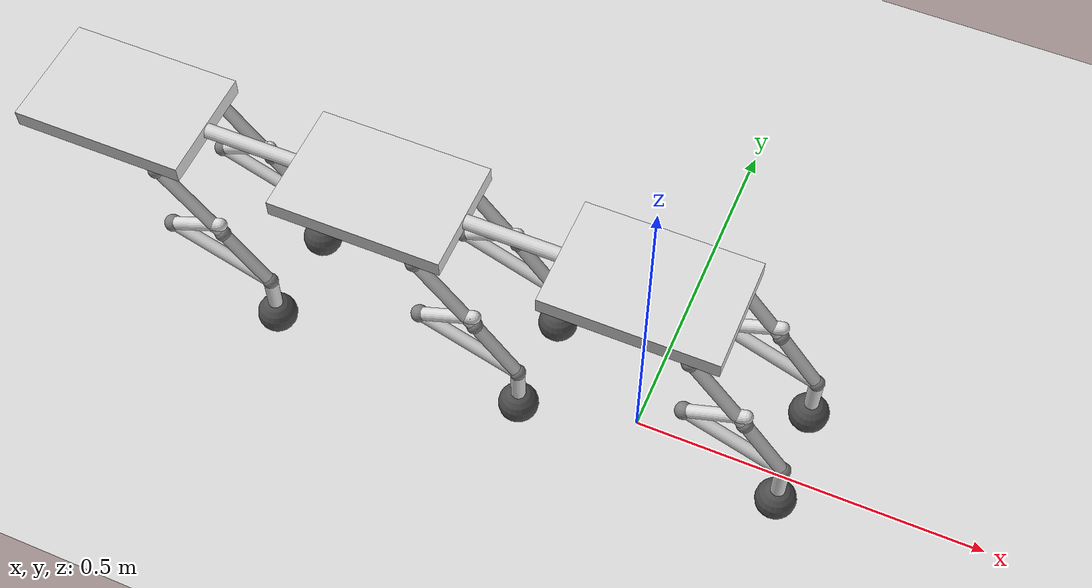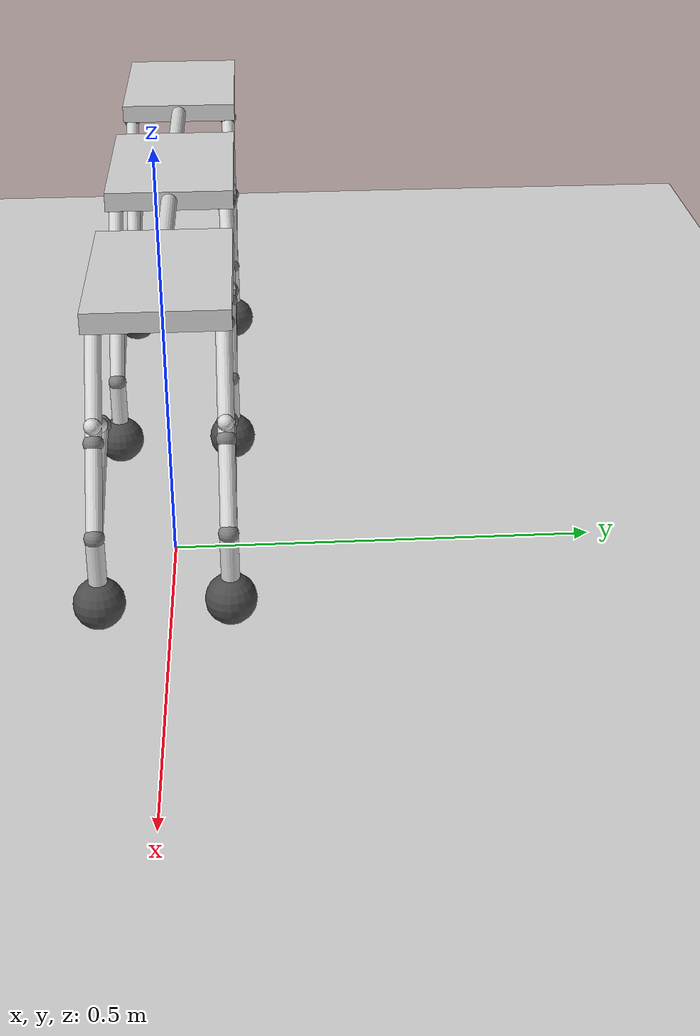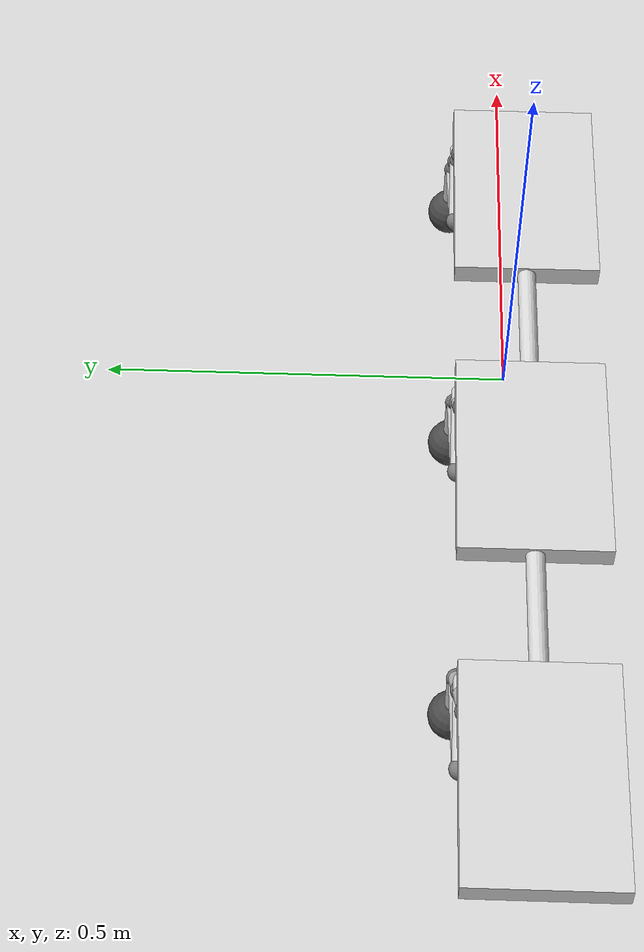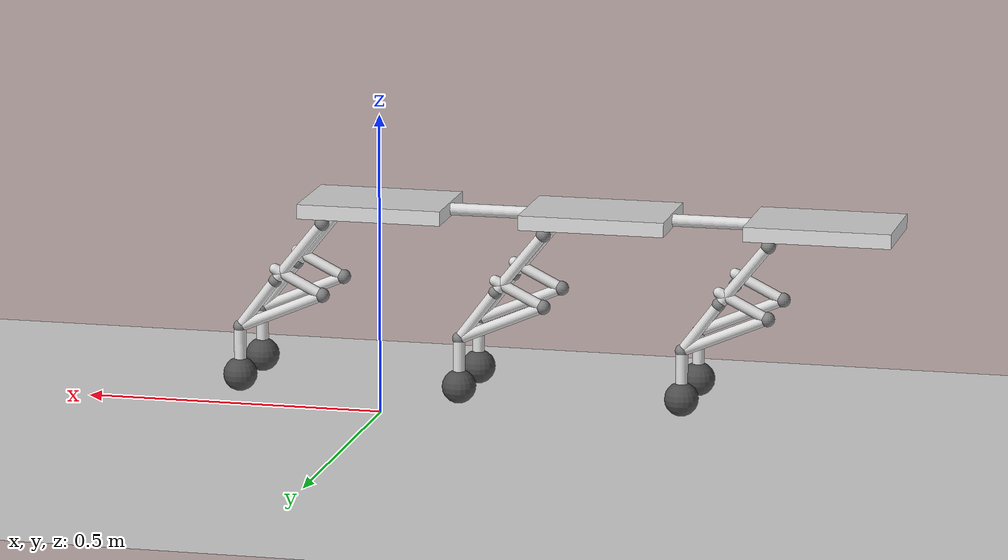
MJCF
<mujoco model="jansen_linkage_robot">
  <compiler angle="radian" coordinate="local" inertiafromgeom="true"/>

  <option timestep="0.002" gravity="0 0 -9.81" iterations="50" solver="Newton" tolerance="1e-10">
    <flag warmstart="enable" energy="enable"/>
  </option>

  <default>
    <joint limited="true" damping="0.5" armature="0.01"/>
    <geom conaffinity="1" condim="3" contype="1" friction="1.5 0.005 0.0001" rgba="0.85 0.85 0.85 1" margin="0.001" solref="0.02 1"/>
    <equality solimp="0.95 0.99 0.001" solref="0.02 1"/>
  </default>

  <asset>
    <texture name="grid" type="2d" builtin="checker" width="512" height="512" rgb1="0.15 0.15 0.15" rgb2="0.25 0.25 0.25"/>
    <material name="grid" texture="grid" texrepeat="10 10" reflectance="0.3"/>
    <material name="linkage" rgba="0.7 0.7 0.7 1"/>
    <material name="actuator" rgba="0.7 0.75 0.35 1"/>
    <material name="platform" rgba="0.6 0.6 0.65 1"/>
  </asset>

  <worldbody>
    <light directional="true" diffuse="0.8 0.8 0.8" specular="0.4 0.4 0.4" pos="0 0 5" dir="0 0 -1"/>
    <light directional="true" diffuse="0.5 0.5 0.5" specular="0.2 0.2 0.2" pos="3 3 4" dir="-1 -1 -1"/>
    <geom name="floor" pos="0 0 0" size="10 10 0.1" type="plane" material="grid" condim="3"/>

    <body name="base" pos="0 0 0.35">
      <freejoint/>
      <geom name="base_plate" type="box" size="0.12 0.08 0.012" mass="0.8" material="platform"/>

      <!-- Front Left Leg -->
      <!-- Fixed pivot point on platform (top of triangle) -->
      <body name="leg1_pivot" pos="0.08 0.07 -0.02">
        <geom name="leg1_pivot_sphere" type="sphere" size="0.012" mass="0.02" rgba="0.5 0.5 0.5 1"/>
      </body>

      <!-- Crank - rotates from pivot -->
      <body name="leg1_crank" pos="0.08 0.07 -0.02">
        <joint name="leg1_crank_j" type="hinge" axis="0 1 0" range="-6.28 6.28" damping="0.2"/>
        <geom name="leg1_crank_geom" type="capsule" fromto="0 0 0 0.08 0 -0.10" size="0.009" mass="0.04" material="actuator"/>

        <!-- Point A at end of crank -->
        <body name="leg1_A" pos="0.08 0 -0.10">
          <geom name="leg1_A_sphere" type="sphere" size="0.011" mass="0.02" rgba="0.5 0.5 0.5 1"/>
        </body>
      </body>

      <!-- Fixed lower pivot (bottom left of triangle) -->
      <body name="leg1_lower_pivot" pos="0.08 0.07 -0.14">
        <geom name="leg1_lower_pivot_sphere" type="sphere" size="0.012" mass="0.02" rgba="0.5 0.5 0.5 1"/>
      </body>

      <!-- Link from lower pivot to point A (left side of triangle) -->
      <body name="leg1_left_link" pos="0.08 0.07 -0.14">
        <joint name="leg1_left_j" type="hinge" axis="0 1 0" range="-3.14 3.14" damping="0.3"/>
        <geom name="leg1_left_geom" type="capsule" fromto="0 0 0 0.08 0 0.04" size="0.009" mass="0.04" material="linkage"/>
      </body>

      <!-- Link from lower pivot to point B (bottom of triangle) -->
      <body name="leg1_bottom_link" pos="0.08 0.07 -0.14">
        <joint name="leg1_bottom_j" type="hinge" axis="0 1 0" range="-3.14 3.14" damping="0.3"/>
        <geom name="leg1_bottom_geom" type="capsule" fromto="0 0 0 0.14 0 -0.06" size="0.009" mass="0.05" material="linkage"/>

        <!-- Point B -->
        <body name="leg1_B" pos="0.14 0 -0.06">
          <geom name="leg1_B_sphere" type="sphere" size="0.011" mass="0.02" rgba="0.5 0.5 0.5 1"/>
        </body>
      </body>

      <!-- Link from A to B (right side of triangle) -->
      <body name="leg1_right_link" pos="0.16 0.07 -0.12">
        <joint name="leg1_right_j" type="hinge" axis="0 1 0" range="-3.14 3.14" damping="0.3"/>
        <geom name="leg1_right_geom" type="capsule" fromto="0 0 0 0.06 0 -0.08" size="0.009" mass="0.04" material="linkage"/>
      </body>

      <!-- Vertical link with foot (pyramid edge) -->
      <body name="leg1_vertical" pos="0.22 0.07 -0.20">
        <joint name="leg1_vertical_j" type="hinge" axis="0 1 0" range="-3.14 3.14" damping="0.3"/>
        <geom name="leg1_vertical_geom" type="capsule" fromto="0 0 0 0 0 -0.08" size="0.010" mass="0.045" material="linkage"/>

        <body name="leg1_foot" pos="0 0 -0.08">
          <geom name="leg1_foot_tip" type="sphere" size="0.028" mass="0.08" rgba="0.3 0.3 0.3 1" friction="2.5 0.005 0.0001"/>
        </body>
      </body>

      <!-- Top pyramid link (from A to top of vertical) -->
      <body name="leg1_top_pyramid" pos="0.16 0.07 -0.12">
        <joint name="leg1_top_pyr_j" type="hinge" axis="0 1 0" range="-3.14 3.14" damping="0.3"/>
        <geom name="leg1_top_pyr_geom" type="capsule" fromto="0 0 0 0.06 0 -0.08" size="0.009" mass="0.04" material="linkage"/>
      </body>

      <!-- Bottom pyramid link (from B to bottom of vertical) -->
      <body name="leg1_bottom_pyramid" pos="0.22 0.07 -0.20">
        <joint name="leg1_bot_pyr_j" type="hinge" axis="0 1 0" range="-3.14 3.14" damping="0.3"/>
        <geom name="leg1_bot_pyr_geom" type="capsule" fromto="0 0 0 0 0 -0.08" size="0.009" mass="0.04" material="linkage"/>
      </body>

      <!-- Front Right Leg (mirror) -->
      <body name="leg2_pivot" pos="0.08 -0.07 -0.02">
        <geom name="leg2_pivot_sphere" type="sphere" size="0.012" mass="0.02" rgba="0.5 0.5 0.5 1"/>
      </body>

      <body name="leg2_crank" pos="0.08 -0.07 -0.02">
        <joint name="leg2_crank_j" type="hinge" axis="0 1 0" range="-6.28 6.28" damping="0.2"/>
        <geom name="leg2_crank_geom" type="capsule" fromto="0 0 0 0.08 0 -0.10" size="0.009" mass="0.04" material="actuator"/>
        <body name="leg2_A" pos="0.08 0 -0.10">
          <geom name="leg2_A_sphere" type="sphere" size="0.011" mass="0.02" rgba="0.5 0.5 0.5 1"/>
        </body>
      </body>

      <body name="leg2_lower_pivot" pos="0.08 -0.07 -0.14">
        <geom name="leg2_lower_pivot_sphere" type="sphere" size="0.012" mass="0.02" rgba="0.5 0.5 0.5 1"/>
      </body>

      <body name="leg2_left_link" pos="0.08 -0.07 -0.14">
        <joint name="leg2_left_j" type="hinge" axis="0 1 0" range="-3.14 3.14" damping="0.3"/>
        <geom name="leg2_left_geom" type="capsule" fromto="0 0 0 0.08 0 0.04" size="0.009" mass="0.04" material="linkage"/>
      </body>

      <body name="leg2_bottom_link" pos="0.08 -0.07 -0.14">
        <joint name="leg2_bottom_j" type="hinge" axis="0 1 0" range="-3.14 3.14" damping="0.3"/>
        <geom name="leg2_bottom_geom" type="capsule" fromto="0 0 0 0.14 0 -0.06" size="0.009" mass="0.05" material="linkage"/>
        <body name="leg2_B" pos="0.14 0 -0.06">
          <geom name="leg2_B_sphere" type="sphere" size="0.011" mass="0.02" rgba="0.5 0.5 0.5 1"/>
        </body>
      </body>

      <body name="leg2_right_link" pos="0.16 -0.07 -0.12">
        <joint name="leg2_right_j" type="hinge" axis="0 1 0" range="-3.14 3.14" damping="0.3"/>
        <geom name="leg2_right_geom" type="capsule" fromto="0 0 0 0.06 0 -0.08" size="0.009" mass="0.04" material="linkage"/>
      </body>

      <body name="leg2_vertical" pos="0.22 -0.07 -0.20">
        <joint name="leg2_vertical_j" type="hinge" axis="0 1 0" range="-3.14 3.14" damping="0.3"/>
        <geom name="leg2_vertical_geom" type="capsule" fromto="0 0 0 0 0 -0.08" size="0.010" mass="0.045" material="linkage"/>
        <body name="leg2_foot" pos="0 0 -0.08">
          <geom name="leg2_foot_tip" type="sphere" size="0.028" mass="0.08" rgba="0.3 0.3 0.3 1" friction="2.5 0.005 0.0001"/>
        </body>
      </body>

      <body name="leg2_top_pyramid" pos="0.16 -0.07 -0.12">
        <joint name="leg2_top_pyr_j" type="hinge" axis="0 1 0" range="-3.14 3.14" damping="0.3"/>
        <geom name="leg2_top_pyr_geom" type="capsule" fromto="0 0 0 0.06 0 -0.08" size="0.009" mass="0.04" material="linkage"/>
      </body>

      <body name="leg2_bottom_pyramid" pos="0.22 -0.07 -0.20">
        <joint name="leg2_bot_pyr_j" type="hinge" axis="0 1 0" range="-3.14 3.14" damping="0.3"/>
        <geom name="leg2_bot_pyr_geom" type="capsule" fromto="0 0 0 0 0 -0.08" size="0.009" mass="0.04" material="linkage"/>
      </body>

      <!-- Spine connector -->
      <body name="spine1_link" pos="-0.12 0 0">
        <joint name="spine1_flex" type="hinge" axis="1 0 0" range="-0.3 0.3" damping="1.5"/>
        <geom name="spine1_geom" type="capsule" fromto="0 0 0 -0.25 0 0" size="0.010" mass="0.15" material="linkage"/>

        <!-- Mid platform -->
        <body name="mid_platform" pos="-0.25 0 0">
          <geom name="mid_plate" type="box" size="0.12 0.08 0.012" mass="0.8" material="platform"/>

          <!-- Mid Left Leg -->
          <body name="leg3_pivot" pos="0.08 0.07 -0.02">
            <geom name="leg3_pivot_sphere" type="sphere" size="0.012" mass="0.02" rgba="0.5 0.5 0.5 1"/>
          </body>

          <body name="leg3_crank" pos="0.08 0.07 -0.02">
            <joint name="leg3_crank_j" type="hinge" axis="0 1 0" range="-6.28 6.28" damping="0.2"/>
            <geom name="leg3_crank_geom" type="capsule" fromto="0 0 0 0.08 0 -0.10" size="0.009" mass="0.04" material="actuator"/>
            <body name="leg3_A" pos="0.08 0 -0.10">
              <geom name="leg3_A_sphere" type="sphere" size="0.011" mass="0.02" rgba="0.5 0.5 0.5 1"/>
            </body>
          </body>

          <body name="leg3_lower_pivot" pos="0.08 0.07 -0.14">
            <geom name="leg3_lower_pivot_sphere" type="sphere" size="0.012" mass="0.02" rgba="0.5 0.5 0.5 1"/>
          </body>

          <body name="leg3_left_link" pos="0.08 0.07 -0.14">
            <joint name="leg3_left_j" type="hinge" axis="0 1 0" range="-3.14 3.14" damping="0.3"/>
            <geom name="leg3_left_geom" type="capsule" fromto="0 0 0 0.08 0 0.04" size="0.009" mass="0.04" material="linkage"/>
          </body>

          <body name="leg3_bottom_link" pos="0.08 0.07 -0.14">
            <joint name="leg3_bottom_j" type="hinge" axis="0 1 0" range="-3.14 3.14" damping="0.3"/>
            <geom name="leg3_bottom_geom" type="capsule" fromto="0 0 0 0.14 0 -0.06" size="0.009" mass="0.05" material="linkage"/>
            <body name="leg3_B" pos="0.14 0 -0.06">
              <geom name="leg3_B_sphere" type="sphere" size="0.011" mass="0.02" rgba="0.5 0.5 0.5 1"/>
            </body>
          </body>

          <body name="leg3_right_link" pos="0.16 0.07 -0.12">
            <joint name="leg3_right_j" type="hinge" axis="0 1 0" range="-3.14 3.14" damping="0.3"/>
            <geom name="leg3_right_geom" type="capsule" fromto="0 0 0 0.06 0 -0.08" size="0.009" mass="0.04" material="linkage"/>
          </body>

          <body name="leg3_vertical" pos="0.22 0.07 -0.20">
            <joint name="leg3_vertical_j" type="hinge" axis="0 1 0" range="-3.14 3.14" damping="0.3"/>
            <geom name="leg3_vertical_geom" type="capsule" fromto="0 0 0 0 0 -0.08" size="0.010" mass="0.045" material="linkage"/>
            <body name="leg3_foot" pos="0 0 -0.08">
              <geom name="leg3_foot_tip" type="sphere" size="0.028" mass="0.08" rgba="0.3 0.3 0.3 1" friction="2.5 0.005 0.0001"/>
            </body>
          </body>

          <body name="leg3_top_pyramid" pos="0.16 0.07 -0.12">
            <joint name="leg3_top_pyr_j" type="hinge" axis="0 1 0" range="-3.14 3.14" damping="0.3"/>
            <geom name="leg3_top_pyr_geom" type="capsule" fromto="0 0 0 0.06 0 -0.08" size="0.009" mass="0.04" material="linkage"/>
          </body>

          <body name="leg3_bottom_pyramid" pos="0.22 0.07 -0.20">
            <joint name="leg3_bot_pyr_j" type="hinge" axis="0 1 0" range="-3.14 3.14" damping="0.3"/>
            <geom name="leg3_bot_pyr_geom" type="capsule" fromto="0 0 0 0 0 -0.08" size="0.009" mass="0.04" material="linkage"/>
          </body>

          <!-- Mid Right Leg -->
          <body name="leg4_pivot" pos="0.08 -0.07 -0.02">
            <geom name="leg4_pivot_sphere" type="sphere" size="0.012" mass="0.02" rgba="0.5 0.5 0.5 1"/>
          </body>

          <body name="leg4_crank" pos="0.08 -0.07 -0.02">
            <joint name="leg4_crank_j" type="hinge" axis="0 1 0" range="-6.28 6.28" damping="0.2"/>
            <geom name="leg4_crank_geom" type="capsule" fromto="0 0 0 0.08 0 -0.10" size="0.009" mass="0.04" material="actuator"/>
            <body name="leg4_A" pos="0.08 0 -0.10">
              <geom name="leg4_A_sphere" type="sphere" size="0.011" mass="0.02" rgba="0.5 0.5 0.5 1"/>
            </body>
          </body>

          <body name="leg4_lower_pivot" pos="0.08 -0.07 -0.14">
            <geom name="leg4_lower_pivot_sphere" type="sphere" size="0.012" mass="0.02" rgba="0.5 0.5 0.5 1"/>
          </body>

          <body name="leg4_left_link" pos="0.08 -0.07 -0.14">
            <joint name="leg4_left_j" type="hinge" axis="0 1 0" range="-3.14 3.14" damping="0.3"/>
            <geom name="leg4_left_geom" type="capsule" fromto="0 0 0 0.08 0 0.04" size="0.009" mass="0.04" material="linkage"/>
          </body>

          <body name="leg4_bottom_link" pos="0.08 -0.07 -0.14">
            <joint name="leg4_bottom_j" type="hinge" axis="0 1 0" range="-3.14 3.14" damping="0.3"/>
            <geom name="leg4_bottom_geom" type="capsule" fromto="0 0 0 0.14 0 -0.06" size="0.009" mass="0.05" material="linkage"/>
            <body name="leg4_B" pos="0.14 0 -0.06">
              <geom name="leg4_B_sphere" type="sphere" size="0.011" mass="0.02" rgba="0.5 0.5 0.5 1"/>
            </body>
          </body>

          <body name="leg4_right_link" pos="0.16 -0.07 -0.12">
            <joint name="leg4_right_j" type="hinge" axis="0 1 0" range="-3.14 3.14" damping="0.3"/>
            <geom name="leg4_right_geom" type="capsule" fromto="0 0 0 0.06 0 -0.08" size="0.009" mass="0.04" material="linkage"/>
          </body>

          <body name="leg4_vertical" pos="0.22 -0.07 -0.20">
            <joint name="leg4_vertical_j" type="hinge" axis="0 1 0" range="-3.14 3.14" damping="0.3"/>
            <geom name="leg4_vertical_geom" type="capsule" fromto="0 0 0 0 0 -0.08" size="0.010" mass="0.045" material="linkage"/>
            <body name="leg4_foot" pos="0 0 -0.08">
              <geom name="leg4_foot_tip" type="sphere" size="0.028" mass="0.08" rgba="0.3 0.3 0.3 1" friction="2.5 0.005 0.0001"/>
            </body>
          </body>

          <body name="leg4_top_pyramid" pos="0.16 -0.07 -0.12">
            <joint name="leg4_top_pyr_j" type="hinge" axis="0 1 0" range="-3.14 3.14" damping="0.3"/>
            <geom name="leg4_top_pyr_geom" type="capsule" fromto="0 0 0 0.06 0 -0.08" size="0.009" mass="0.04" material="linkage"/>
          </body>

          <body name="leg4_bottom_pyramid" pos="0.22 -0.07 -0.20">
            <joint name="leg4_bot_pyr_j" type="hinge" axis="0 1 0" range="-3.14 3.14" damping="0.3"/>
            <geom name="leg4_bot_pyr_geom" type="capsule" fromto="0 0 0 0 0 -0.08" size="0.009" mass="0.04" material="linkage"/>
          </body>

          <!-- Second spine segment -->
          <body name="spine2_link" pos="-0.12 0 0">
            <joint name="spine2_flex" type="hinge" axis="1 0 0" range="-0.3 0.3" damping="1.5"/>
            <geom name="spine2_geom" type="capsule" fromto="0 0 0 -0.25 0 0" size="0.010" mass="0.15" material="linkage"/>

            <!-- Rear platform -->
            <body name="rear_platform" pos="-0.25 0 0">
              <geom name="rear_plate" type="box" size="0.12 0.08 0.012" mass="0.8" material="platform"/>

              <!-- Rear Left Leg -->
              <body name="leg5_pivot" pos="0.08 0.07 -0.02">
                <geom name="leg5_pivot_sphere" type="sphere" size="0.012" mass="0.02" rgba="0.5 0.5 0.5 1"/>
              </body>

              <body name="leg5_crank" pos="0.08 0.07 -0.02">
                <joint name="leg5_crank_j" type="hinge" axis="0 1 0" range="-6.28 6.28" damping="0.2"/>
                <geom name="leg5_crank_geom" type="capsule" fromto="0 0 0 0.08 0 -0.10" size="0.009" mass="0.04" material="actuator"/>
                <body name="leg5_A" pos="0.08 0 -0.10">
                  <geom name="leg5_A_sphere" type="sphere" size="0.011" mass="0.02" rgba="0.5 0.5 0.5 1"/>
                </body>
              </body>

              <body name="leg5_lower_pivot" pos="0.08 0.07 -0.14">
                <geom name="leg5_lower_pivot_sphere" type="sphere" size="0.012" mass="0.02" rgba="0.5 0.5 0.5 1"/>
              </body>

              <body name="leg5_left_link" pos="0.08 0.07 -0.14">
                <joint name="leg5_left_j" type="hinge" axis="0 1 0" range="-3.14 3.14" damping="0.3"/>
                <geom name="leg5_left_geom" type="capsule" fromto="0 0 0 0.08 0 0.04" size="0.009" mass="0.04" material="linkage"/>
              </body>

              <body name="leg5_bottom_link" pos="0.08 0.07 -0.14">
                <joint name="leg5_bottom_j" type="hinge" axis="0 1 0" range="-3.14 3.14" damping="0.3"/>
                <geom name="leg5_bottom_geom" type="capsule" fromto="0 0 0 0.14 0 -0.06" size="0.009" mass="0.05" material="linkage"/>
                <body name="leg5_B" pos="0.14 0 -0.06">
                  <geom name="leg5_B_sphere" type="sphere" size="0.011" mass="0.02" rgba="0.5 0.5 0.5 1"/>
                </body>
              </body>

              <body name="leg5_right_link" pos="0.16 0.07 -0.12">
                <joint name="leg5_right_j" type="hinge" axis="0 1 0" range="-3.14 3.14" damping="0.3"/>
                <geom name="leg5_right_geom" type="capsule" fromto="0 0 0 0.06 0 -0.08" size="0.009" mass="0.04" material="linkage"/>
              </body>

              <body name="leg5_vertical" pos="0.22 0.07 -0.20">
                <joint name="leg5_vertical_j" type="hinge" axis="0 1 0" range="-3.14 3.14" damping="0.3"/>
                <geom name="leg5_vertical_geom" type="capsule" fromto="0 0 0 0 0 -0.08" size="0.010" mass="0.045" material="linkage"/>
                <body name="leg5_foot" pos="0 0 -0.08">
                  <geom name="leg5_foot_tip" type="sphere" size="0.028" mass="0.08" rgba="0.3 0.3 0.3 1" friction="2.5 0.005 0.0001"/>
                </body>
              </body>

              <body name="leg5_top_pyramid" pos="0.16 0.07 -0.12">
                <joint name="leg5_top_pyr_j" type="hinge" axis="0 1 0" range="-3.14 3.14" damping="0.3"/>
                <geom name="leg5_top_pyr_geom" type="capsule" fromto="0 0 0 0.06 0 -0.08" size="0.009" mass="0.04" material="linkage"/>
              </body>

              <body name="leg5_bottom_pyramid" pos="0.22 0.07 -0.20">
                <joint name="leg5_bot_pyr_j" type="hinge" axis="0 1 0" range="-3.14 3.14" damping="0.3"/>
                <geom name="leg5_bot_pyr_geom" type="capsule" fromto="0 0 0 0 0 -0.08" size="0.009" mass="0.04" material="linkage"/>
              </body>

              <!-- Rear Right Leg -->
              <body name="leg6_pivot" pos="0.08 -0.07 -0.02">
                <geom name="leg6_pivot_sphere" type="sphere" size="0.012" mass="0.02" rgba="0.5 0.5 0.5 1"/>
              </body>

              <body name="leg6_crank" pos="0.08 -0.07 -0.02">
                <joint name="leg6_crank_j" type="hinge" axis="0 1 0" range="-6.28 6.28" damping="0.2"/>
                <geom name="leg6_crank_geom" type="capsule" fromto="0 0 0 0.08 0 -0.10" size="0.009" mass="0.04" material="actuator"/>
                <body name="leg6_A" pos="0.08 0 -0.10">
                  <geom name="leg6_A_sphere" type="sphere" size="0.011" mass="0.02" rgba="0.5 0.5 0.5 1"/>
                </body>
              </body>

              <body name="leg6_lower_pivot" pos="0.08 -0.07 -0.14">
                <geom name="leg6_lower_pivot_sphere" type="sphere" size="0.012" mass="0.02" rgba="0.5 0.5 0.5 1"/>
              </body>

              <body name="leg6_left_link" pos="0.08 -0.07 -0.14">
                <joint name="leg6_left_j" type="hinge" axis="0 1 0" range="-3.14 3.14" damping="0.3"/>
                <geom name="leg6_left_geom" type="capsule" fromto="0 0 0 0.08 0 0.04" size="0.009" mass="0.04" material="linkage"/>
              </body>

              <body name="leg6_bottom_link" pos="0.08 -0.07 -0.14">
                <joint name="leg6_bottom_j" type="hinge" axis="0 1 0" range="-3.14 3.14" damping="0.3"/>
                <geom name="leg6_bottom_geom" type="capsule" fromto="0 0 0 0.14 0 -0.06" size="0.009" mass="0.05" material="linkage"/>
                <body name="leg6_B" pos="0.14 0 -0.06">
                  <geom name="leg6_B_sphere" type="sphere" size="0.011" mass="0.02" rgba="0.5 0.5 0.5 1"/>
                </body>
              </body>

              <body name="leg6_right_link" pos="0.16 -0.07 -0.12">
                <joint name="leg6_right_j" type="hinge" axis="0 1 0" range="-3.14 3.14" damping="0.3"/>
                <geom name="leg6_right_geom" type="capsule" fromto="0 0 0 0.06 0 -0.08" size="0.009" mass="0.04" material="linkage"/>
              </body>

              <body name="leg6_vertical" pos="0.22 -0.07 -0.20">
                <joint name="leg6_vertical_j" type="hinge" axis="0 1 0" range="-3.14 3.14" damping="0.3"/>
                <geom name="leg6_vertical_geom" type="capsule" fromto="0 0 0 0 0 -0.08" size="0.010" mass="0.045" material="linkage"/>
                <body name="leg6_foot" pos="0 0 -0.08">
                  <geom name="leg6_foot_tip" type="sphere" size="0.028" mass="0.08" rgba="0.3 0.3 0.3 1" friction="2.5 0.005 0.0001"/>
                </body>
              </body>

              <body name="leg6_top_pyramid" pos="0.16 -0.07 -0.12">
                <joint name="leg6_top_pyr_j" type="hinge" axis="0 1 0" range="-3.14 3.14" damping="0.3"/>
                <geom name="leg6_top_pyr_geom" type="capsule" fromto="0 0 0 0.06 0 -0.08" size="0.009" mass="0.04" material="linkage"/>
              </body>

              <body name="leg6_bottom_pyramid" pos="0.22 -0.07 -0.20">
                <joint name="leg6_bot_pyr_j" type="hinge" axis="0 1 0" range="-3.14 3.14" damping="0.3"/>
                <geom name="leg6_bot_pyr_geom" type="capsule" fromto="0 0 0 0 0 -0.08" size="0.009" mass="0.04" material="linkage"/>
              </body>

            </body>
          </body>
        </body>
      </body>
    </body>
  </worldbody>

  <equality>
    <!-- Leg 1 constraints -->
    <weld body1="leg1_crank" body2="leg1_A" anchor="0.08 0 -0.10" solref="0.02 1" solimp="0.95 0.99 0.001"/>
    <weld body1="leg1_left_link" body2="leg1_A" anchor="0.08 0 0.04" solref="0.02 1" solimp="0.95 0.99 0.001"/>
    <weld body1="leg1_bottom_link" body2="leg1_B" anchor="0.14 0 -0.06" solref="0.02 1" solimp="0.95 0.99 0.001"/>
    <weld body1="leg1_right_link" body2="leg1_A" anchor="0 0 0" solref="0.02 1" solimp="0.95 0.99 0.001"/>
    <weld body1="leg1_right_link" body2="leg1_B" anchor="0.06 0 -0.08" solref="0.02 1" solimp="0.95 0.99 0.001"/>
    <weld body1="leg1_top_pyramid" body2="leg1_A" anchor="0 0 0" solref="0.02 1" solimp="0.95 0.99 0.001"/>
    <weld body1="leg1_top_pyramid" body2="leg1_vertical" anchor="0.06 0 -0.08" solref="0.02 1" solimp="0.95 0.99 0.001"/>
    <weld body1="leg1_bottom_pyramid" body2="leg1_B" anchor="0 0 0" solref="0.02 1" solimp="0.95 0.99 0.001"/>
    <weld body1="leg1_bottom_pyramid" body2="leg1_foot" anchor="0 0 -0.08" solref="0.02 1" solimp="0.95 0.99 0.001"/>

    <!-- Leg 2 constraints -->
    <weld body1="leg2_crank" body2="leg2_A" anchor="0.08 0 -0.10" solref="0.02 1" solimp="0.95 0.99 0.001"/>
    <weld body1="leg2_left_link" body2="leg2_A" anchor="0.08 0 0.04" solref="0.02 1" solimp="0.95 0.99 0.001"/>
    <weld body1="leg2_bottom_link" body2="leg2_B" anchor="0.14 0 -0.06" solref="0.02 1" solimp="0.95 0.99 0.001"/>
    <weld body1="leg2_right_link" body2="leg2_A" anchor="0 0 0" solref="0.02 1" solimp="0.95 0.99 0.001"/>
    <weld body1="leg2_right_link" body2="leg2_B" anchor="0.06 0 -0.08" solref="0.02 1" solimp="0.95 0.99 0.001"/>
    <weld body1="leg2_top_pyramid" body2="leg2_A" anchor="0 0 0" solref="0.02 1" solimp="0.95 0.99 0.001"/>
    <weld body1="leg2_top_pyramid" body2="leg2_vertical" anchor="0.06 0 -0.08" solref="0.02 1" solimp="0.95 0.99 0.001"/>
    <weld body1="leg2_bottom_pyramid" body2="leg2_B" anchor="0 0 0" solref="0.02 1" solimp="0.95 0.99 0.001"/>
    <weld body1="leg2_bottom_pyramid" body2="leg2_foot" anchor="0 0 -0.08" solref="0.02 1" solimp="0.95 0.99 0.001"/>

    <!-- Leg 3 constraints -->
    <weld body1="leg3_crank" body2="leg3_A" anchor="0.08 0 -0.10" solref="0.02 1" solimp="0.95 0.99 0.001"/>
    <weld body1="leg3_left_link" body2="leg3_A" anchor="0.08 0 0.04" solref="0.02 1" solimp="0.95 0.99 0.001"/>
    <weld body1="leg3_bottom_link" body2="leg3_B" anchor="0.14 0 -0.06" solref="0.02 1" solimp="0.95 0.99 0.001"/>
    <weld body1="leg3_right_link" body2="leg3_A" anchor="0 0 0" solref="0.02 1" solimp="0.95 0.99 0.001"/>
    <weld body1="leg3_right_link" body2="leg3_B" anchor="0.06 0 -0.08" solref="0.02 1" solimp="0.95 0.99 0.001"/>
    <weld body1="leg3_top_pyramid" body2="leg3_A" anchor="0 0 0" solref="0.02 1" solimp="0.95 0.99 0.001"/>
    <weld body1="leg3_top_pyramid" body2="leg3_vertical" anchor="0.06 0 -0.08" solref="0.02 1" solimp="0.95 0.99 0.001"/>
    <weld body1="leg3_bottom_pyramid" body2="leg3_B" anchor="0 0 0" solref="0.02 1" solimp="0.95 0.99 0.001"/>
    <weld body1="leg3_bottom_pyramid" body2="leg3_foot" anchor="0 0 -0.08" solref="0.02 1" solimp="0.95 0.99 0.001"/>

    <!-- Leg 4 constraints -->
    <weld body1="leg4_crank" body2="leg4_A" anchor="0.08 0 -0.10" solref="0.02 1" solimp="0.95 0.99 0.001"/>
    <weld body1="leg4_left_link" body2="leg4_A" anchor="0.08 0 0.04" solref="0.02 1" solimp="0.95 0.99 0.001"/>
    <weld body1="leg4_bottom_link" body2="leg4_B" anchor="0.14 0 -0.06" solref="0.02 1" solimp="0.95 0.99 0.001"/>
    <weld body1="leg4_right_link" body2="leg4_A" anchor="0 0 0" solref="0.02 1" solimp="0.95 0.99 0.001"/>
    <weld body1="leg4_right_link" body2="leg4_B" anchor="0.06 0 -0.08" solref="0.02 1" solimp="0.95 0.99 0.001"/>
    <weld body1="leg4_top_pyramid" body2="leg4_A" anchor="0 0 0" solref="0.02 1" solimp="0.95 0.99 0.001"/>
    <weld body1="leg4_top_pyramid" body2="leg4_vertical" anchor="0.06 0 -0.08" solref="0.02 1" solimp="0.95 0.99 0.001"/>
    <weld body1="leg4_bottom_pyramid" body2="leg4_B" anchor="0 0 0" solref="0.02 1" solimp="0.95 0.99 0.001"/>
    <weld body1="leg4_bottom_pyramid" body2="leg4_foot" anchor="0 0 -0.08" solref="0.02 1" solimp="0.95 0.99 0.001"/>

    <!-- Leg 5 constraints -->
    <weld body1="leg5_crank" body2="leg5_A" anchor="0.08 0 -0.10" solref="0.02 1" solimp="0.95 0.99 0.001"/>
    <weld body1="leg5_left_link" body2="leg5_A" anchor="0.08 0 0.04" solref="0.02 1" solimp="0.95 0.99 0.001"/>
    <weld body1="leg5_bottom_link" body2="leg5_B" anchor="0.14 0 -0.06" solref="0.02 1" solimp="0.95 0.99 0.001"/>
    <weld body1="leg5_right_link" body2="leg5_A" anchor="0 0 0" solref="0.02 1" solimp="0.95 0.99 0.001"/>
    <weld body1="leg5_right_link" body2="leg5_B" anchor="0.06 0 -0.08" solref="0.02 1" solimp="0.95 0.99 0.001"/>
    <weld body1="leg5_top_pyramid" body2="leg5_A" anchor="0 0 0" solref="0.02 1" solimp="0.95 0.99 0.001"/>
    <weld body1="leg5_top_pyramid" body2="leg5_vertical" anchor="0.06 0 -0.08" solref="0.02 1" solimp="0.95 0.99 0.001"/>
    <weld body1="leg5_bottom_pyramid" body2="leg5_B" anchor="0 0 0" solref="0.02 1" solimp="0.95 0.99 0.001"/>
    <weld body1="leg5_bottom_pyramid" body2="leg5_foot" anchor="0 0 -0.08" solref="0.02 1" solimp="0.95 0.99 0.001"/>

    <!-- Leg 6 constraints -->
    <weld body1="leg6_crank" body2="leg6_A" anchor="0.08 0 -0.10" solref="0.02 1" solimp="0.95 0.99 0.001"/>
    <weld body1="leg6_left_link" body2="leg6_A" anchor="0.08 0 0.04" solref="0.02 1" solimp="0.95 0.99 0.001"/>
    <weld body1="leg6_bottom_link" body2="leg6_B" anchor="0.14 0 -0.06" solref="0.02 1" solimp="0.95 0.99 0.001"/>
    <weld body1="leg6_right_link" body2="leg6_A" anchor="0 0 0" solref="0.02 1" solimp="0.95 0.99 0.001"/>
    <weld body1="leg6_right_link" body2="leg6_B" anchor="0.06 0 -0.08" solref="0.02 1" solimp="0.95 0.99 0.001"/>
    <weld body1="leg6_top_pyramid" body2="leg6_A" anchor="0 0 0" solref="0.02 1" solimp="0.95 0.99 0.001"/>
    <weld body1="leg6_top_pyramid" body2="leg6_vertical" anchor="0.06 0 -0.08" solref="0.02 1" solimp="0.95 0.99 0.001"/>
    <weld body1="leg6_bottom_pyramid" body2="leg6_B" anchor="0 0 0" solref="0.02 1" solimp="0.95 0.99 0.001"/>
    <weld body1="leg6_bottom_pyramid" body2="leg6_foot" anchor="0 0 -0.08" solref="0.02 1" solimp="0.95 0.99 0.001"/>
  </equality>

  <actuator>
    <!-- Velocity motors for continuous rotation (walking gait) -->
    <velocity name="leg1_motor" joint="leg1_crank_j" kv="100"/>
    <velocity name="leg2_motor" joint="leg2_crank_j" kv="100"/>
    <velocity name="leg3_motor" joint="leg3_crank_j" kv="100"/>
    <velocity name="leg4_motor" joint="leg4_crank_j" kv="100"/>
    <velocity name="leg5_motor" joint="leg5_crank_j" kv="100"/>
    <velocity name="leg6_motor" joint="leg6_crank_j" kv="100"/>

    <!-- Spine actuators for turning -->
    <position name="spine1_motor" joint="spine1_flex" kp="800" kv="40" ctrlrange="-0.3 0.3"/>
    <position name="spine2_motor" joint="spine2_flex" kp="800" kv="40" ctrlrange="-0.3 0.3"/>
  </actuator>

  <sensor>
    <framepos name="base_pos" objtype="body" objname="base"/>
    <framequat name="base_quat" objtype="body" objname="base"/>
  </sensor>

</mujoco>
